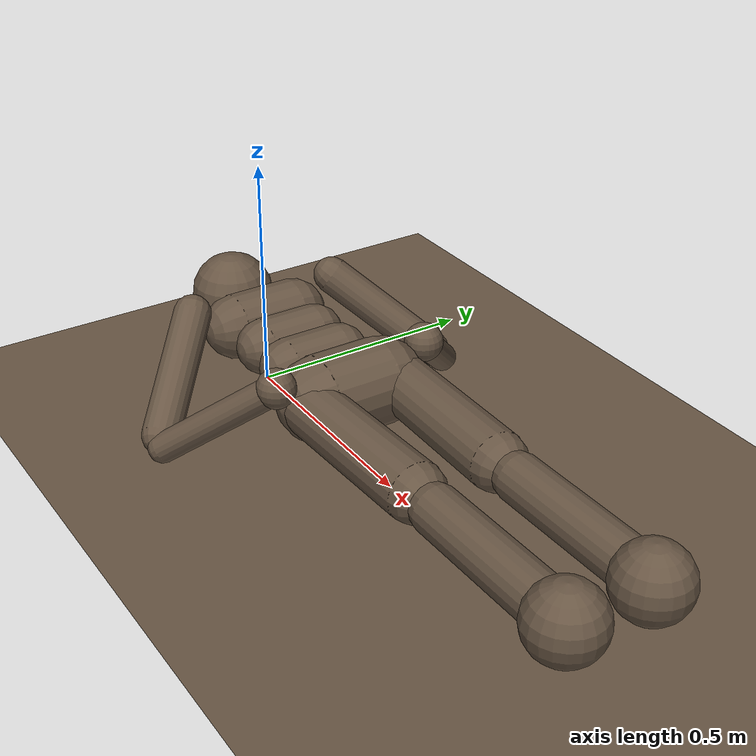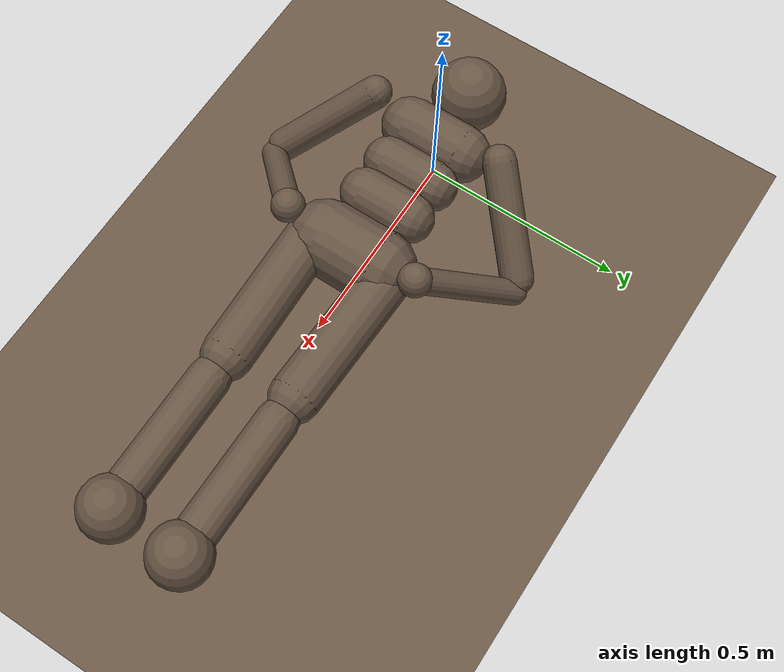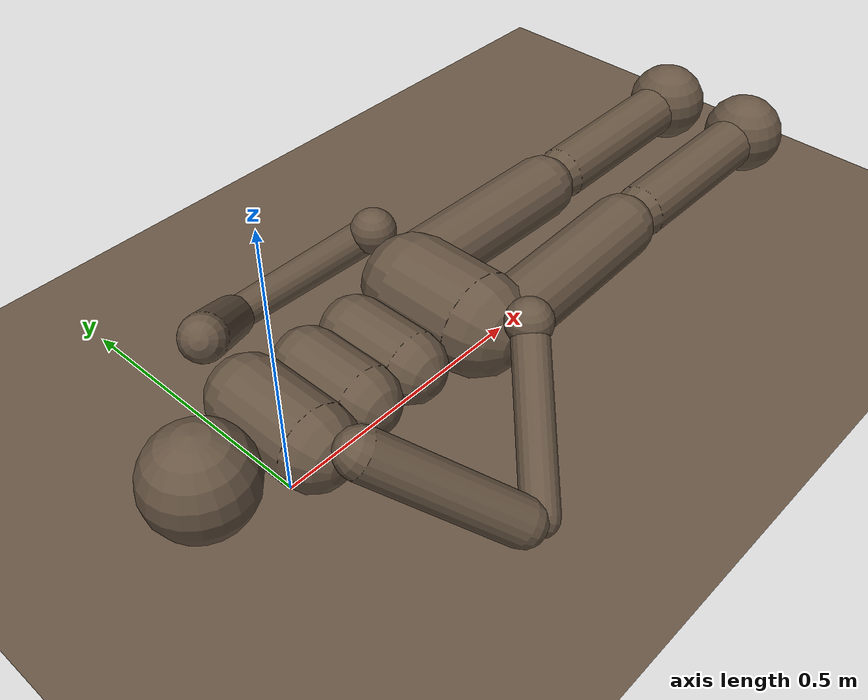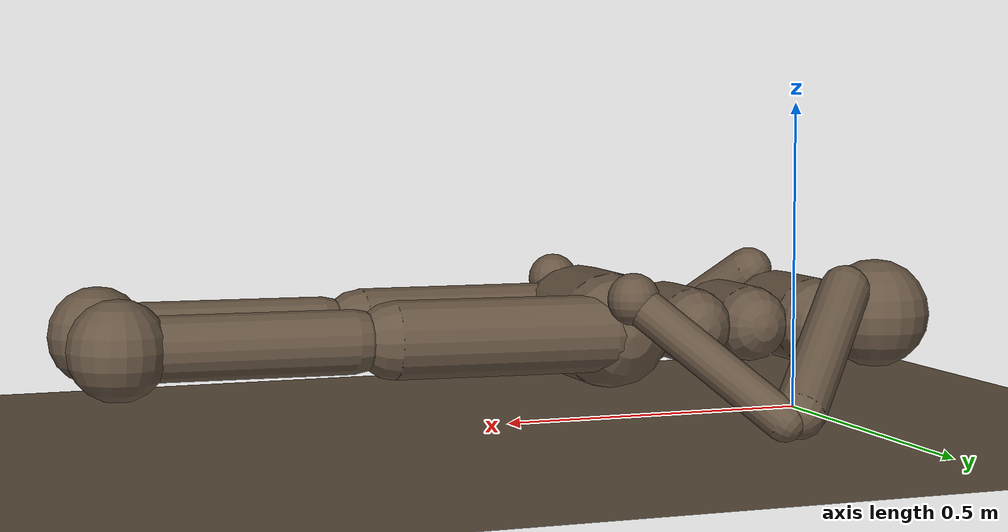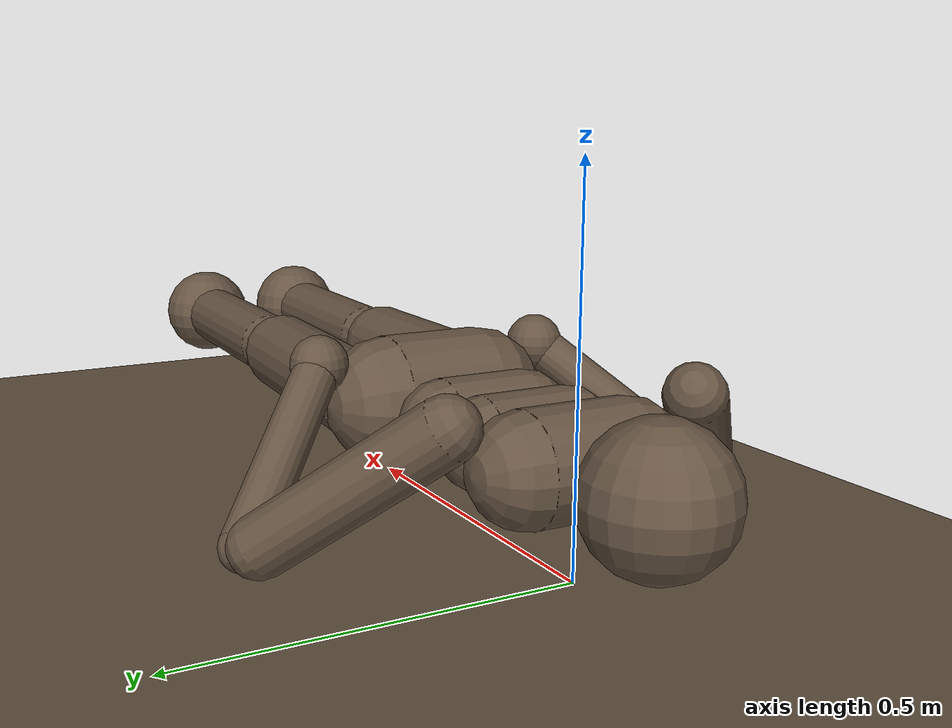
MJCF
<mujoco model="humanoidstandup">
    <compiler angle="degree" inertiafromgeom="true"/>
    <default>
        <joint armature="1" damping="1" limited="true"/>
        <geom conaffinity="0" condim="3" contype="0" material="geom" rgba="0.4 0.33 0.26 1.0"/>
        <motor ctrllimited="true" ctrlrange="-.4 .4"/>
    </default>
    <!-- Removed RK4 integrator for brax. -->
    <option iterations="8" timestep="0.003" ls_iterations="6">
    </option>
    <custom>
        <!-- brax custom params -->
        <numeric data="2500" name="constraint_limit_stiffness"/>
        <numeric data="27000" name="constraint_stiffness"/>
        <numeric data="30" name="constraint_ang_damping"/>
        <numeric data="80" name="constraint_vel_damping"/>
        <numeric data="0.5" name="joint_scale_pos"/>
        <numeric data="0.1" name="joint_scale_ang"/>
        <numeric data="-0.05" name="ang_damping"/>
        <numeric data="0" name="spring_mass_scale"/>
        <numeric data="1" name="spring_inertia_scale"/>
        <numeric data="20" name="matrix_inv_iterations"/>
        <numeric data="15" name="solver_maxls"/>
    </custom>
    <size nkey="5" nuser_geom="1"/>
    <visual>
        <map fogend="5" fogstart="3"/>
    </visual>
    <asset>
        <texture builtin="gradient" height="100" rgb1=".48 .52 .50" rgb2="0.08 0.10 0.09" type="skybox" width="100"/>
        <texture builtin="flat" height="1278" mark="cross" markrgb="1 1 1" name="texgeom" random="0.01" rgb1="0.8 0.6 0.4" rgb2="0.8 0.6 0.4" type="cube" width="127"/>
        <texture builtin="checker" height="100" name="texplane" rgb1="0.70 0.74 0.70" rgb2="0.64 0.68 0.64" type="2d" width="100"/>
        <material name="MatPlane" reflectance="0.18" shininess="0.1" specular="0.1" texrepeat="60 60" texture="texplane"/>
        <material name="geom" texture="texgeom" texuniform="true"/>
    </asset>
    <worldbody>
        <light cutoff="100" diffuse="1 1 1" dir="-0 0 -1.3" directional="true" exponent="1" pos="0 0 1.3" specular=".1 .1 .1"/>
        <geom conaffinity="1" condim="3" friction="1 .1 .1" material="MatPlane" name="floor" pos="0 0 0" size="20 20 0.125" type="plane"/>
        <camera name="fixedfar" pos="0 -5 5" zaxis="0 -1 1" mode="fixed"/>

        <body name="torso" pos="0 0 0.15">
            <site name="agent" rgba="1 0 0 .1"/>
            <camera name="vision" pos="0 0 .15" xyaxes="0 -1 0 .4 0 1" fovy="90"/>
            <camera name="vision_back" pos="0 0 .15" xyaxes="0 1 0 0 0 1" fovy="90"/>

            <camera name="track" mode="trackcom" pos="0 -3 .5" xyaxes="1 0 0 0 0 1"/>
            <joint armature="0" damping="0" limited="false" name="root" pos="0 0 0" stiffness="0" type="free"/>
            <geom contype="1" fromto="0 -.07 0 0 .07 0" name="torso1" size="0.07" type="capsule"/>
            <geom contype="1" name="head" pos="-.15 0 0" size=".09" type="sphere" user="258"/>
            <geom contype="1" fromto=".11 -.06 0 .11 .06 0" name="uwaist" size="0.06" type="capsule"/>
            <body name="lwaist" pos=".21 0 0" quat="1.000 0 -0.002 0">
                <geom fromto="0 -.06 0 0 .06 0" name="lwaist" size="0.06" type="capsule"/>
                <joint armature="0.02" axis="0 0 1" damping="5" name="abdomen_z" pos="0 0 0.065" range="-45 45" stiffness="20" type="hinge"/>
                <joint armature="0.02" axis="0 1 0" damping="5" name="abdomen_y" pos="0 0 0.065" range="-75 30" stiffness="10" type="hinge"/>
                <body name="pelvis" pos="0.165 0 0" quat="1.000 0 -0.002 0">
                    <joint armature="0.02" axis="1 0 0" damping="5" name="abdomen_x" pos="0 0 0.1" range="-35 35" stiffness="10" type="hinge"/>
                    <geom fromto="-.02 -.07 0 -.02 .07 0" name="butt" size="0.09" type="capsule"/>
                    <body name="right_thigh" pos="0 -0.1 0">
                        <joint armature="0.01" axis="1 0 0" damping="5" name="right_hip_x" pos="0 0 0" range="-25 5" stiffness="10" type="hinge"/>
                        <joint armature="0.01" axis="0 0 1" damping="5" name="right_hip_z" pos="0 0 0" range="-60 35" stiffness="10" type="hinge"/>
                        <joint armature="0.0080" axis="0 1 0" damping="5" name="right_hip_y" pos="0 0 0" range="-110 20" stiffness="20" type="hinge"/>
                        <geom contype="1" fromto="0 0 0 0.34 0.01 0" name="right_thigh1" size="0.06" type="capsule"/>
                        <body name="right_shin" pos="0.403 0.01 0">
                            <joint armature="0.0060" axis="0 -1 0" name="right_knee" pos="0 0 .02" range="-160 -2" type="hinge"/>
                            <geom fromto="0 0 0 0.3 0 0" name="right_shin1" size="0.049" type="capsule"/>
                            <body name="right_foot" pos="0.35 0 -.10">
                                <geom contype="1" name="right_foot" pos="0 0 0.1" size="0.075" type="sphere" user="0"/>
                            </body>
                        </body>
                    </body>
                    <body name="left_thigh" pos="0 0.1 0">
                        <joint armature="0.01" axis="-1 0 0" damping="5" name="left_hip_x" pos="0 0 0" range="-25 5" stiffness="10" type="hinge"/>
                        <joint armature="0.01" axis="0 0 -1" damping="5" name="left_hip_z" pos="0 0 0" range="-60 35" stiffness="10" type="hinge"/>
                        <joint armature="0.01" axis="0 1 0" damping="5" name="left_hip_y" pos="0 0 0" range="-120 20" stiffness="20" type="hinge"/>
                        <geom contype="1" fromto="0 0 0 0.34 -0.01 0" name="left_thigh1" size="0.06" type="capsule"/>
                        <body name="left_shin" pos="0.403 -0.01 0">
                            <joint armature="0.0060" axis="0 -1 0" name="left_knee" pos="0 0 .02" range="-160 -2" stiffness="1" type="hinge"/>
                            <geom fromto="0 0 0 0.3 0 0" name="left_shin1" size="0.049" type="capsule"/>
                            <body name="left_foot" pos="0.35 0 -.1">
                                <geom contype="1" name="left_foot" type="sphere" size="0.075" pos="0 0 0.1" user="0" />
                            </body>
                        </body>
                    </body>
                </body>
            </body>
            <body name="right_upper_arm" pos="0 -0.17 0.06">
                <joint armature="0.0068" axis="2 1 1" name="right_shoulder1" pos="0 0 0" range="-85 60" stiffness="1" type="hinge"/>
                <joint armature="0.0051" axis="0 -1 1" name="right_shoulder2" pos="0 0 0" range="-85 60" stiffness="1" type="hinge"/>
                <geom fromto="0 0 0 .16 -.16 -.16" name="right_uarm1" size="0.04 0.16" type="capsule"/>
                <body name="right_lower_arm" pos=".18 -.18 -.18">
                    <joint armature="0.0028" axis="0 -1 1" name="right_elbow" pos="0 0 0" range="-90 50" stiffness="0" type="hinge"/>
                    <geom contype="1" fromto="0.01 0.01 0.01 .17 .17 .17" name="right_larm" size="0.031" type="capsule"/>
                    <geom name="right_hand" pos=".18 .18 .18" size="0.04" type="sphere"/>
                    <camera pos="0 0 0"/>
                </body>
            </body>
            <body name="left_upper_arm" pos="0 0.17 0.06">
                <joint armature="0.0068" axis="2 -1 1" name="left_shoulder1" pos="0 0 0" range="-60 85" stiffness="1" type="hinge"/>
                <joint armature="0.0051" axis="0 1 1" name="left_shoulder2" pos="0 0 0" range="-60 85" stiffness="1" type="hinge"/>
                <geom fromto="0 0 0 .16 .16 -.16" name="left_uarm1" size="0.04 0.16" type="capsule"/>
                <body name="left_lower_arm" pos=".18 .18 -.18">
                    <joint armature="0.0028" axis="0 -1 -1" name="left_elbow" pos="0 0 0" range="-90 50" stiffness="0" type="hinge"/>
                    <geom contype="1" fromto="0.01 -0.01 0.01 .17 -.17 .17" name="left_larm" size="0.031" type="capsule"/>
                    <geom name="left_hand" pos=".18 -.18 .18" size="0.04" type="sphere"/>
                </body>
            </body>
        </body>
    </worldbody>
    <sensor>
        <accelerometer site="agent" name="accelerometer"/>
        <velocimeter site="agent" name="velocimeter"/>
        <gyro site="agent" name="gyro"/>
        <magnetometer site="agent" name="magnetometer"/>

        <!-- Used for intrinsic constraints -->
        <subtreecom body="torso" name="subtreecom"/>
        <subtreelinvel body="torso" name="subtreelinvel"/>
        <subtreeangmom body="torso" name="subtreeangmom"/>
    </sensor>

    <actuator>
        <motor gear="100" joint="abdomen_y" name="abdomen_y"/>
        <motor gear="100" joint="abdomen_z" name="abdomen_z"/>
        <motor gear="100" joint="abdomen_x" name="abdomen_x"/>
        <motor gear="100" joint="right_hip_x" name="right_hip_x"/>
        <motor gear="100" joint="right_hip_z" name="right_hip_z"/>
        <motor gear="300" joint="right_hip_y" name="right_hip_y"/>
        <motor gear="200" joint="right_knee" name="right_knee"/>
        <motor gear="100" joint="left_hip_x" name="left_hip_x"/>
        <motor gear="100" joint="left_hip_z" name="left_hip_z"/>
        <motor gear="300" joint="left_hip_y" name="left_hip_y"/>
        <motor gear="200" joint="left_knee" name="left_knee"/>
        <motor gear="25" joint="right_shoulder1" name="right_shoulder1"/>
        <motor gear="25" joint="right_shoulder2" name="right_shoulder2"/>
        <motor gear="25" joint="right_elbow" name="right_elbow"/>
        <motor gear="25" joint="left_shoulder1" name="left_shoulder1"/>
        <motor gear="25" joint="left_shoulder2" name="left_shoulder2"/>
        <motor gear="25" joint="left_elbow" name="left_elbow"/>
    </actuator>
</mujoco>
